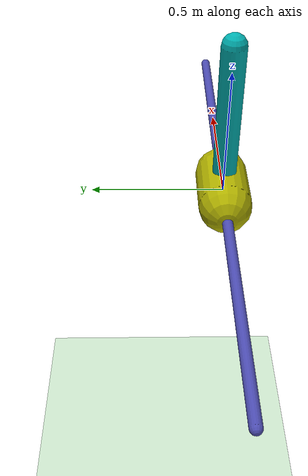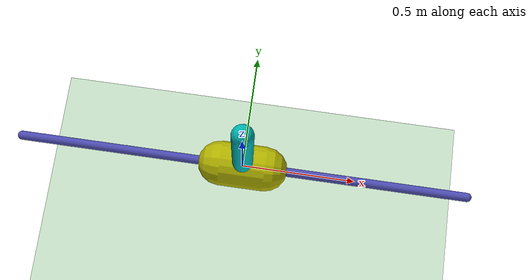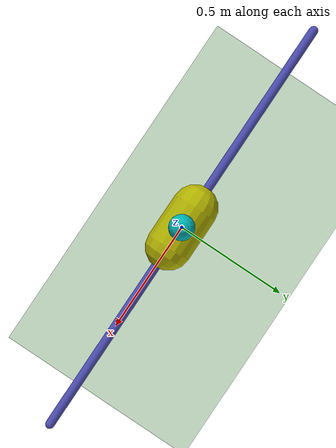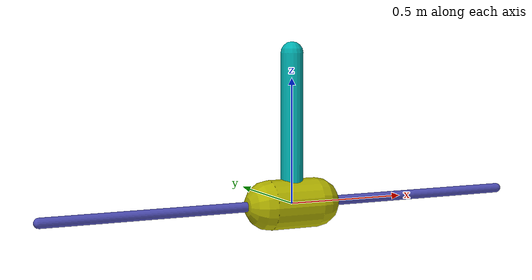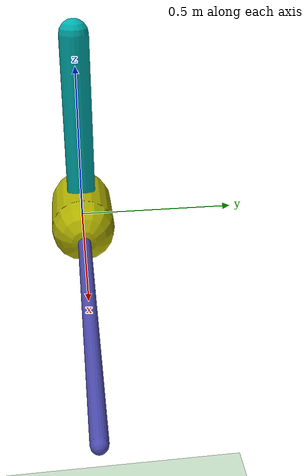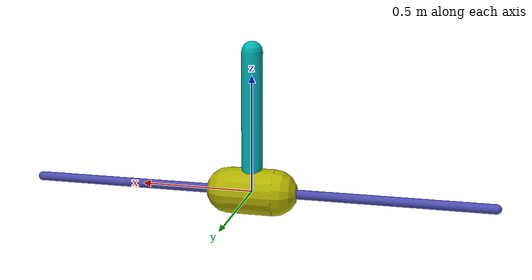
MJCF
<mujoco model='cartpole'>
  <compiler inertiafromgeom='true' coordinate='local' />
  <default>
    <joint damping='0.05' />
    <geom contype='0' friction='1 0.1 0.1' rgba='0.7 0.7 0 1' />
  </default>
  <option timestep='0.02' gravity='1e-5 0 -9.81' />
  <size nstack='3000' />
  <worldbody>
    <geom name='floor' pos='0 0 -3.0' size='40 40 40' type='plane' rgba='0.8 0.9 0.8 1' />
    <geom name='rail' type='capsule' pos='0 0 0' quat='0.707 0 0.707 0' size='0.02 1' rgba='0.3 0.3 0.7 1' />
    <body name='cart' pos='0 0 0'>
      <joint name='slider' type='slide' limited='true' pos='0 0 0' axis='1 0 0' range='-1 1' />
      <geom name='cart' type='capsule' pos='0 0 0' quat='0.707 0 0.707 0' size='0.1 0.1' />
      <body name='pole' pos='0 0 0'>
        <joint name='hinge' type='hinge' pos='0 0 0' axis='0 1 0' ref="180"/>
        <geom name='cpole' type='capsule' fromto='0 0 0 0 0 0.6' size='0.045 0.3' rgba='0 0.7 0.7 1' />
        <site name='tip' pos='.001 0 .6' size='.01 .01 .01' />
      </body>
    </body>
    <camera name="cam" mode='fixed' pos='0 2 0' xyaxes='-1 0 0 0 0 1' />
  </worldbody>
  <actuator>
    <motor name='slide' joint='slider' gear='100' ctrlrange='-1 1' ctrllimited='true' />
  </actuator>
  <keyframe>
    <key qpos='0 -2' qvel='1 0' />
  </keyframe>
</mujoco>
